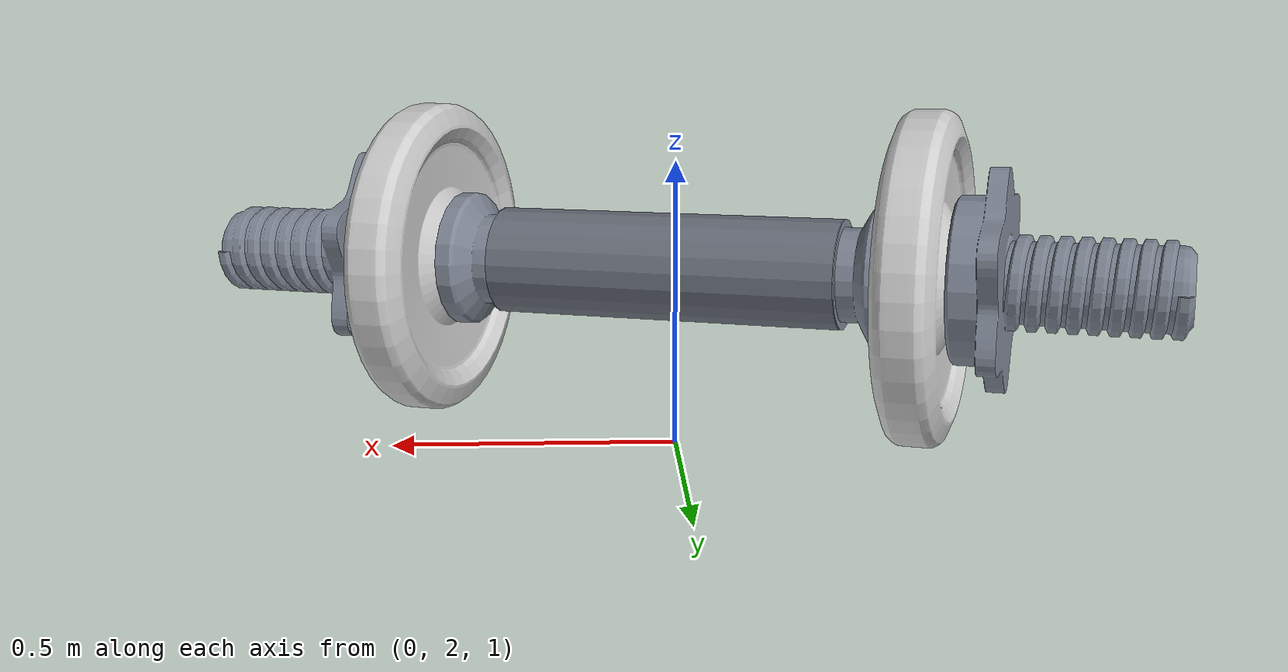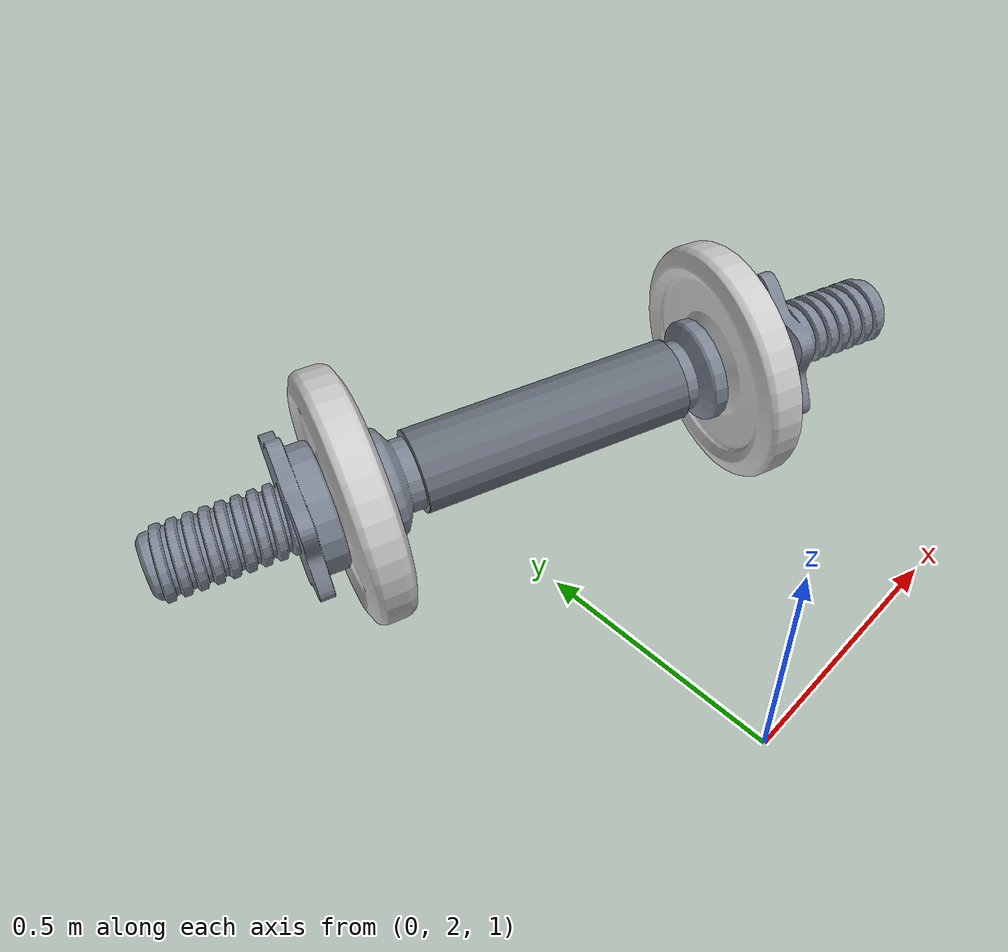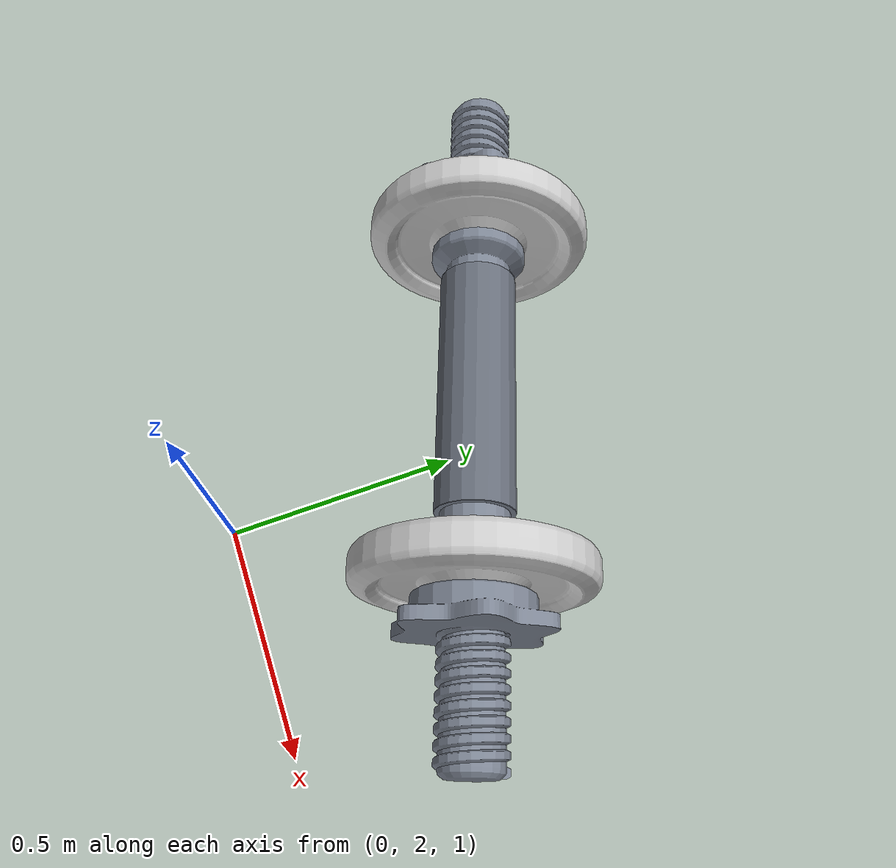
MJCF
<mujoco model="weight_2">
  <compiler angle="radian" meshdir="assets" texturedir="assets" autolimits="true"/>
  <default>
    <default class="visual">
      <geom group="2" type="mesh" contype="0" conaffinity="0"/>
    </default>
    <default class="collision">
      <geom group="3" type="mesh"  solimp="0.95 0.99 0.001" solref="0.004 1" friction="1.0 0.005 0.0001"/>
    </default>
  </default>
  <asset>
    <material name="Metal_black" specular="0.5" shininess="0.36" rgba="0.800000 0.800000 0.800000 1.000000"/>
    <material name="Stainless_Steel" specular="0.5" shininess="0.7225" rgba="0.492784 0.524263 0.580810 1.000000"/>
    <material name="Stainless_Steel_grip" specular="0.5" shininess="0.49" rgba="0.407240 0.433089 0.479510 1.000000"/>
    <mesh file="weight_2_0.obj"/>
    <mesh file="weight_2_1.obj"/>
    <mesh file="weight_2_2.obj"/>
    <mesh file="weight_2_collision_0.obj"/>
    <mesh file="weight_2_collision_1.obj"/>
    <mesh file="weight_2_collision_2.obj"/>
    <mesh file="weight_2_collision_3.obj"/>
    <mesh file="weight_2_collision_4.obj"/>
    <mesh file="weight_2_collision_5.obj"/>
    <mesh file="weight_2_collision_6.obj"/>
    <mesh file="weight_2_collision_7.obj"/>
    <mesh file="weight_2_collision_8.obj"/>
    <mesh file="weight_2_collision_9.obj"/>
    <mesh file="weight_2_collision_10.obj"/>
    <mesh file="weight_2_collision_11.obj"/>
    <mesh file="weight_2_collision_12.obj"/>
    <mesh file="weight_2_collision_13.obj"/>
    <mesh file="weight_2_collision_14.obj"/>
    <mesh file="weight_2_collision_15.obj"/>
    <mesh file="weight_2_collision_16.obj"/>
    <mesh file="weight_2_collision_17.obj"/>
    <mesh file="weight_2_collision_18.obj"/>
    <mesh file="weight_2_collision_19.obj"/>
    <mesh file="weight_2_collision_20.obj"/>
    <mesh file="weight_2_collision_21.obj"/>
    <mesh file="weight_2_collision_22.obj"/>
    <mesh file="weight_2_collision_23.obj"/>
    <mesh file="weight_2_collision_24.obj"/>
    <mesh file="weight_2_collision_25.obj"/>
    <mesh file="weight_2_collision_26.obj"/>
    <mesh file="weight_2_collision_27.obj"/>
    <mesh file="weight_2_collision_28.obj"/>
    <mesh file="weight_2_collision_29.obj"/>
    <mesh file="weight_2_collision_30.obj"/>
    <mesh file="weight_2_collision_31.obj"/>
    <mesh file="weight_2_collision_32.obj"/>
    <mesh file="weight_2_collision_33.obj"/>
    <mesh file="weight_2_collision_34.obj"/>
    <mesh file="weight_2_collision_35.obj"/>
    <mesh file="weight_2_collision_36.obj"/>
  </asset>
  <worldbody>
    <body name="weight_2">
      <geom mesh="weight_2_0" material="Stainless_Steel_grip" class="visual"/>
      <geom mesh="weight_2_1" material="Metal_black" class="visual"/>
      <geom mesh="weight_2_2" material="Stainless_Steel" class="visual"/>
      <geom mesh="weight_2_collision_0" rgba="0.6933064572153412 0.6043055198549218 0.8010098223842386 1" class="collision"/>
      <geom mesh="weight_2_collision_1" rgba="0.1194591392358968 0.4153228351663828 0.09388402886290437 1" class="collision"/>
      <geom mesh="weight_2_collision_2" rgba="0.7417998437586729 0.9121394817341538 0.7155025235645869 1" class="collision"/>
      <geom mesh="weight_2_collision_3" rgba="0.6919744375610762 0.3618462378143066 0.949889525845729 1" class="collision"/>
      <geom mesh="weight_2_collision_4" rgba="0.3174744382325634 0.6091259724878039 0.721057085676365 1" class="collision"/>
      <geom mesh="weight_2_collision_5" rgba="0.4516295036618345 0.7751262210210682 0.7569852225911188 1" class="collision"/>
      <geom mesh="weight_2_collision_6" rgba="0.34284049519088033 0.5087315266646459 0.3787893559307888 1" class="collision"/>
      <geom mesh="weight_2_collision_7" rgba="0.9415117475290452 0.4888701684780712 0.4000414760237665 1" class="collision"/>
      <geom mesh="weight_2_collision_8" rgba="0.7297474406387123 0.5457565246322956 0.17226133421328205 1" class="collision"/>
      <geom mesh="weight_2_collision_9" rgba="0.7195591251602457 0.2996541628662941 0.9727573944067502 1" class="collision"/>
      <geom mesh="weight_2_collision_10" rgba="0.4917223963902384 0.5988687190156505 0.5402973127088782 1" class="collision"/>
      <geom mesh="weight_2_collision_11" rgba="0.12389058666429598 0.4593002641181141 0.09618802574836949 1" class="collision"/>
      <geom mesh="weight_2_collision_12" rgba="0.18645625880271455 0.9412635997381821 0.26102432997306413 1" class="collision"/>
      <geom mesh="weight_2_collision_13" rgba="0.45944217884679206 0.4008903956643578 0.28973451056307775 1" class="collision"/>
      <geom mesh="weight_2_collision_14" rgba="0.6892586723831857 0.8092969540940105 0.7350982043102846 1" class="collision"/>
      <geom mesh="weight_2_collision_15" rgba="0.7201560237626148 0.41629671484147857 0.3737341758819783 1" class="collision"/>
      <geom mesh="weight_2_collision_16" rgba="0.7621586161401447 0.04181152008490496 0.0865451570048642 1" class="collision"/>
      <geom mesh="weight_2_collision_17" rgba="0.3338008305068545 0.3181113770344479 0.7389868023180463 1" class="collision"/>
      <geom mesh="weight_2_collision_18" rgba="0.2231483261095295 0.4281491723340104 0.9785833432967569 1" class="collision"/>
      <geom mesh="weight_2_collision_19" rgba="0.3520471573162326 0.9723543580238817 0.5409935679157446 1" class="collision"/>
      <geom mesh="weight_2_collision_20" rgba="0.8857061069752239 0.567406807938631 0.5321359031732146 1" class="collision"/>
      <geom mesh="weight_2_collision_21" rgba="0.5472676480476956 0.8704096158498823 0.3240957496862814 1" class="collision"/>
      <geom mesh="weight_2_collision_22" rgba="0.3774143815157045 0.7486141621762159 0.6854655789239339 1" class="collision"/>
      <geom mesh="weight_2_collision_23" rgba="0.5321735716522411 0.7891730995904666 0.035354966930557286 1" class="collision"/>
      <geom mesh="weight_2_collision_24" rgba="0.44611790151044606 0.7082249661583148 0.6709662493766105 1" class="collision"/>
      <geom mesh="weight_2_collision_25" rgba="0.41087438992334535 0.5907633563623204 0.8711207785315807 1" class="collision"/>
      <geom mesh="weight_2_collision_26" rgba="0.920392719900848 0.8578611665387881 0.4081625147992096 1" class="collision"/>
      <geom mesh="weight_2_collision_27" rgba="0.7925113493959216 0.5274232168496678 0.36025313663102443 1" class="collision"/>
      <geom mesh="weight_2_collision_28" rgba="0.9730873503738754 0.15556498319365197 0.6124927723733906 1" class="collision"/>
      <geom mesh="weight_2_collision_29" rgba="0.5196322620885108 0.09699788883368243 0.8605436851069033 1" class="collision"/>
      <geom mesh="weight_2_collision_30" rgba="0.1554566984143677 0.747304807581896 0.642817423145945 1" class="collision"/>
      <geom mesh="weight_2_collision_31" rgba="0.12724609411378018 0.8034834674314258 0.9629011416295559 1" class="collision"/>
      <geom mesh="weight_2_collision_32" rgba="0.43670965328558276 0.932507417534415 0.2380434352528008 1" class="collision"/>
      <geom mesh="weight_2_collision_33" rgba="0.6279179939093036 0.6074731486779502 0.014293464892529362 1" class="collision"/>
      <geom mesh="weight_2_collision_34" rgba="0.4934218119429963 0.26201173724038074 0.7026352378727958 1" class="collision"/>
      <geom mesh="weight_2_collision_35" rgba="0.30694654105031005 0.48875431101101396 0.8474087646666876 1" class="collision"/>
      <geom mesh="weight_2_collision_36" rgba="0.07625375798790968 0.640562446679929 0.37993983996855984 1" class="collision"/>
    </body>
  </worldbody>
</mujoco>
